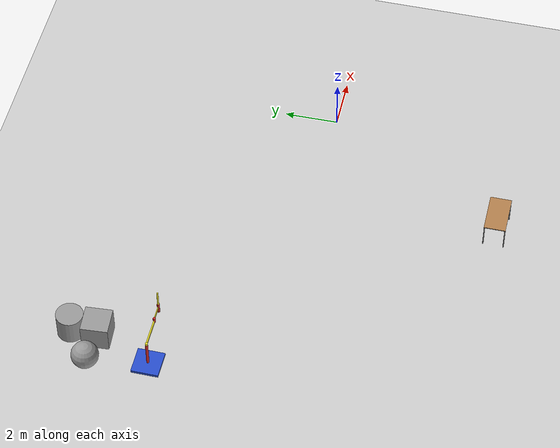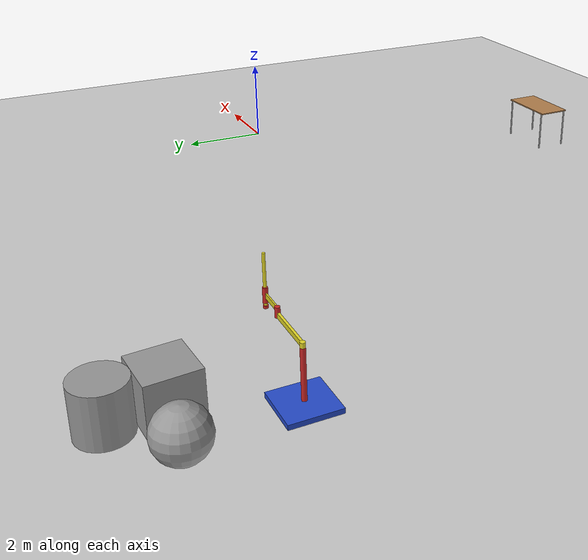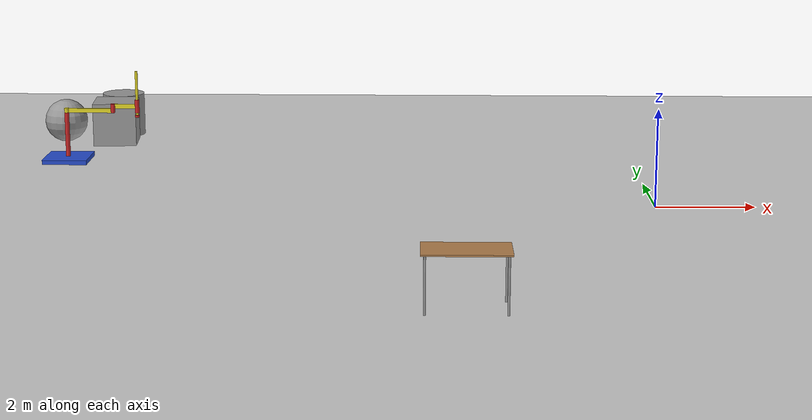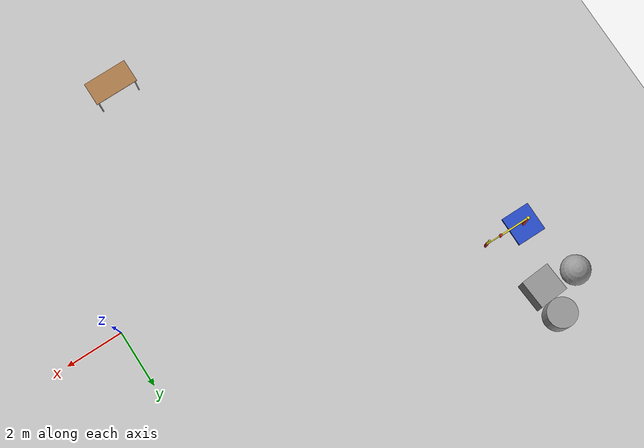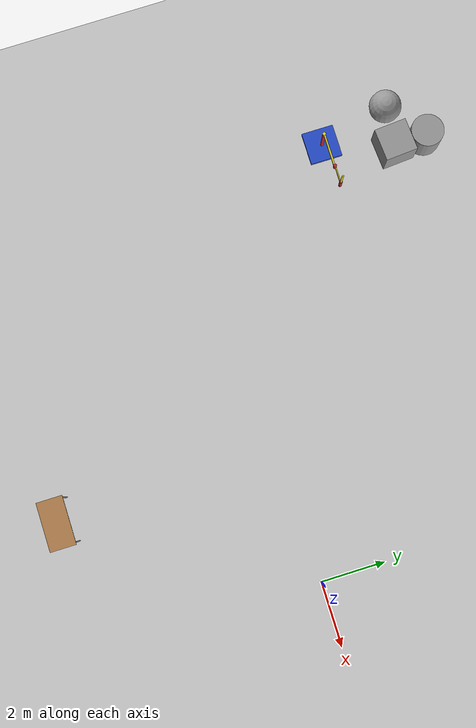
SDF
<sdf version="1.7">
 <world name="default">
  <model name="ground_plane">
   <static>1</static>
   <link name="link">
    <collision name="collision">
     <geometry><plane><normal>0 0 1</normal><size>100 100</size></plane></geometry>
     <surface><friction><ode><mu>100</mu><mu2>50</mu2></ode></friction></surface>
    </collision>
    <visual name="visual">
     <cast_shadows>0</cast_shadows>
     <geometry><plane><normal>0 0 1</normal><size>100 100</size></plane></geometry>
     <material>
      <script><uri>file://media/materials/scripts/gazebo.material</uri><name>Gazebo/Grey</name></script>
     </material>
    </visual>
   </link>
  </model>
  <model name="unit_cylinder">
   <pose>-11.9768 7.13366 0.499992 -3e-06 -4e-06 0.013015</pose>
   <link name="link">
    <inertial>
     <mass>1</mass>
     <inertia><ixx>0.145833</ixx><ixy>0</ixy><ixz>0</ixz><iyy>0.145833</iyy><iyz>0</iyz><izz>0.125</izz></inertia>
    </inertial>
    <collision name="collision">
     <geometry><cylinder><radius>0.5</radius><length>1</length></cylinder></geometry>
    </collision>
    <visual name="visual">
     <geometry><cylinder><radius>0.5</radius><length>1</length></cylinder></geometry>
     <material>
      <script><name>Gazebo/Grey</name><uri>file://media/materials/scripts/gazebo.material</uri></script>
     </material>
    </visual>
   </link>
  </model>
  <model name="unit_sphere">
   <pose>-13.2033 6.23711 0.5 0 -0 0</pose>
   <link name="link">
    <inertial>
     <mass>1</mass>
     <inertia><ixx>0.1</ixx><ixy>0</ixy><ixz>0</ixz><iyy>0.1</iyy><iyz>0</iyz><izz>0.1</izz></inertia>
    </inertial>
    <collision name="collision"><geometry><sphere><radius>0.5</radius></sphere></geometry></collision>
    <visual name="visual">
     <geometry><sphere><radius>0.5</radius></sphere></geometry>
     <material>
      <script><name>Gazebo/Grey</name><uri>file://media/materials/scripts/gazebo.material</uri></script>
     </material>
    </visual>
   </link>
  </model>
  <model name="unit_box">
   <pose>-11.9904 6.12986 0.5 0 -0 0.073842</pose>
   <link name="link">
    <inertial>
     <mass>1</mass>
     <inertia>
      <ixx>0.166667</ixx>
      <ixy>0</ixy>
      <ixz>0</ixz>
      <iyy>0.166667</iyy>
      <iyz>0</iyz>
      <izz>0.166667</izz>
     </inertia>
    </inertial>
    <collision name="collision"><geometry><box><size>1 1 1</size></box></geometry></collision>
    <visual name="visual">
     <geometry><box><size>1 1 1</size></box></geometry>
     <material>
      <script><name>Gazebo/Grey</name><uri>file://media/materials/scripts/gazebo.material</uri></script>
     </material>
    </visual>
   </link>
  </model>
  <model name="simple_arm">
   <link name="arm_base">
    <inertial>
     <pose>0 0 0.00099 0 -0 0</pose>
     <inertia><ixx>1.11</ixx><ixy>0</ixy><ixz>0</ixz><iyy>100.11</iyy><iyz>0</iyz><izz>1.01</izz></inertia>
     <mass>101</mass>
    </inertial>
    <collision name="arm_base_geom">
     <pose>0 0 0.05 0 -0 0</pose>
     <geometry><box><size>1 1 0.1</size></box></geometry>
    </collision>
    <visual name="arm_base_geom_visual">
     <pose>0 0 0.05 0 -0 0</pose>
     <geometry><box><size>1 1 0.1</size></box></geometry>
     <material>
      <script><uri>file://media/materials/scripts/gazebo.material</uri><name>Gazebo/Blue</name></script>
     </material>
    </visual>
    <collision name="arm_base_geom_arm_trunk">
     <pose>0 0 0.6 0 -0 0</pose>
     <geometry><cylinder><radius>0.05</radius><length>1</length></cylinder></geometry>
    </collision>
    <visual name="arm_base_geom_arm_trunk_visual">
     <pose>0 0 0.6 0 -0 0</pose>
     <geometry><cylinder><radius>0.05</radius><length>1</length></cylinder></geometry>
     <material>
      <script><uri>file://media/materials/scripts/gazebo.material</uri><name>Gazebo/Red</name></script>
     </material>
    </visual>
   </link>
   <link name="arm_shoulder_pan">
    <pose>0 0 1.1 0 -0 0</pose>
    <inertial>
     <pose>0.045455 0 0 0 -0 0</pose>
     <inertia><ixx>0.011</ixx><ixy>0</ixy><ixz>0</ixz><iyy>0.0225</iyy><iyz>0</iyz><izz>0.0135</izz></inertia>
     <mass>1.1</mass>
    </inertial>
    <collision name="arm_shoulder_pan_geom">
     <pose>0 0 0.05 0 -0 0</pose>
     <geometry><cylinder><radius>0.05</radius><length>0.1</length></cylinder></geometry>
    </collision>
    <visual name="arm_shoulder_pan_geom_visual">
     <pose>0 0 0.05 0 -0 0</pose>
     <geometry><cylinder><radius>0.05</radius><length>0.1</length></cylinder></geometry>
     <material>
      <script><uri>file://media/materials/scripts/gazebo.material</uri><name>Gazebo/Yellow</name></script>
     </material>
    </visual>
    <collision name="arm_shoulder_pan_geom_arm_shoulder">
     <pose>0.55 0 0.05 0 -0 0</pose>
     <geometry><box><size>1 0.05 0.1</size></box></geometry>
    </collision>
    <visual name="arm_shoulder_pan_geom_arm_shoulder_visual">
     <pose>0.55 0 0.05 0 -0 0</pose>
     <geometry><box><size>1 0.05 0.1</size></box></geometry>
     <material>
      <script><uri>file://media/materials/scripts/gazebo.material</uri><name>Gazebo/Yellow</name></script>
     </material>
    </visual>
   </link>
   <link name="arm_elbow_pan">
    <pose>1.05 0 1.1 0 -0 0</pose>
    <inertial>
     <pose>0.0875 0 0.083333 0 -0 0</pose>
     <inertia>
      <ixx>0.031</ixx>
      <ixy>0</ixy>
      <ixz>0.005</ixz>
      <iyy>0.07275</iyy>
      <iyz>0</iyz>
      <izz>0.04475</izz>
     </inertia>
     <mass>1.2</mass>
    </inertial>
    <collision name="arm_elbow_pan_geom">
     <pose>0 0 0.1 0 -0 0</pose>
     <geometry><cylinder><radius>0.05</radius><length>0.2</length></cylinder></geometry>
    </collision>
    <visual name="arm_elbow_pan_geom_visual">
     <pose>0 0 0.1 0 -0 0</pose>
     <geometry><cylinder><radius>0.05</radius><length>0.2</length></cylinder></geometry>
     <material>
      <script><uri>file://media/materials/scripts/gazebo.material</uri><name>Gazebo/Red</name></script>
     </material>
    </visual>
    <collision name="arm_elbow_pan_geom_arm_elbow">
     <pose>0.3 0 0.15 0 -0 0</pose>
     <geometry><box><size>0.5 0.03 0.1</size></box></geometry>
    </collision>
    <visual name="arm_elbow_pan_geom_arm_elbow_visual">
     <pose>0.3 0 0.15 0 -0 0</pose>
     <geometry><box><size>0.5 0.03 0.1</size></box></geometry>
     <material>
      <script><uri>file://media/materials/scripts/gazebo.material</uri><name>Gazebo/Yellow</name></script>
     </material>
    </visual>
    <collision name="arm_elbow_pan_geom_arm_wrist">
     <pose>0.55 0 0.15 0 -0 0</pose>
     <geometry><cylinder><radius>0.05</radius><length>0.3</length></cylinder></geometry>
    </collision>
    <visual name="arm_elbow_pan_geom_arm_wrist_visual">
     <pose>0.55 0 0.15 0 -0 0</pose>
     <geometry><cylinder><radius>0.05</radius><length>0.3</length></cylinder></geometry>
     <material>
      <script><uri>file://media/materials/scripts/gazebo.material</uri><name>Gazebo/Red</name></script>
     </material>
    </visual>
   </link>
   <link name="arm_wrist_lift">
    <pose>1.6 0 1.05 0 -0 0</pose>
    <inertial>
     <inertia><ixx>0.01</ixx><ixy>0</ixy><ixz>0</ixz><iyy>0.01</iyy><iyz>0</iyz><izz>0.001</izz></inertia>
     <mass>0.1</mass>
    </inertial>
    <collision name="arm_wrist_lift_geom">
     <pose>0 0 0.5 0 -0 0</pose>
     <geometry><cylinder><radius>0.03</radius><length>1</length></cylinder></geometry>
    </collision>
    <visual name="arm_wrist_lift_geom_visual">
     <pose>0 0 0.5 0 -0 0</pose>
     <geometry><cylinder><radius>0.03</radius><length>1</length></cylinder></geometry>
     <material>
      <script><uri>file://media/materials/scripts/gazebo.material</uri><name>Gazebo/Yellow</name></script>
     </material>
    </visual>
   </link>
   <link name="arm_wrist_roll">
    <pose>1.6 0 1 0 -0 0</pose>
    <inertial>
     <inertia><ixx>0.01</ixx><ixy>0</ixy><ixz>0</ixz><iyy>0.01</iyy><iyz>0</iyz><izz>0.001</izz></inertia>
     <mass>0.1</mass>
    </inertial>
    <collision name="arm_wrist_roll_geom">
     <pose>0 0 0.025 0 -0 0</pose>
     <geometry><cylinder><radius>0.05</radius><length>0.05</length></cylinder></geometry>
    </collision>
    <visual name="arm_wrist_roll_geom_visual">
     <pose>0 0 0.025 0 -0 0</pose>
     <geometry><cylinder><radius>0.05</radius><length>0.05</length></cylinder></geometry>
     <material>
      <script><uri>file://media/materials/scripts/gazebo.material</uri><name>Gazebo/Red</name></script>
     </material>
    </visual>
   </link>
   <joint name="arm_shoulder_pan_joint" type="revolute">
    <parent>arm_base</parent>
    <child>arm_shoulder_pan</child>
    <axis>
     <dynamics>
      <damping>1</damping>
      <friction>0</friction>
      <spring_reference>0</spring_reference>
      <spring_stiffness>0</spring_stiffness>
     </dynamics>
     <xyz expressed_in="__model__">0 0 1</xyz>
     <limit><lower>-1e+16</lower><upper>1e+16</upper></limit>
    </axis>
   </joint>
   <joint name="arm_elbow_pan_joint" type="revolute">
    <parent>arm_shoulder_pan</parent>
    <child>arm_elbow_pan</child>
    <axis>
     <dynamics>
      <damping>1</damping>
      <friction>0</friction>
      <spring_reference>0</spring_reference>
      <spring_stiffness>0</spring_stiffness>
     </dynamics>
     <xyz expressed_in="__model__">0 0 1</xyz>
     <limit><lower>-1e+16</lower><upper>1e+16</upper></limit>
    </axis>
   </joint>
   <joint name="arm_wrist_lift_joint" type="prismatic">
    <parent>arm_elbow_pan</parent>
    <child>arm_wrist_lift</child>
    <axis>
     <dynamics>
      <damping>1</damping>
      <friction>0</friction>
      <spring_reference>0</spring_reference>
      <spring_stiffness>0</spring_stiffness>
     </dynamics>
     <limit><lower>-0.8</lower><upper>0.1</upper></limit>
     <xyz expressed_in="__model__">0 0 1</xyz>
    </axis>
   </joint>
   <joint name="arm_wrist_roll_joint" type="revolute">
    <parent>arm_wrist_lift</parent>
    <child>arm_wrist_roll</child>
    <axis>
     <dynamics>
      <damping>1</damping>
      <friction>0</friction>
      <spring_reference>0</spring_reference>
      <spring_stiffness>0</spring_stiffness>
     </dynamics>
     <limit><lower>-2.99999</lower><upper>2.99999</upper></limit>
     <xyz expressed_in="__model__">0 0 1</xyz>
    </axis>
   </joint>
   <pose>-12.7411 4.07911 -0 0 0 -0.001314</pose>
  </model>
  <model name="table">
   <static>1</static>
   <link name="link">
    <collision name="surface">
     <pose>0 0 1 0 -0 0</pose>
     <geometry><box><size>1.5 0.8 0.03</size></box></geometry>
     <surface><friction><ode><mu>0.6</mu><mu2>0.6</mu2></ode></friction></surface>
    </collision>
    <visual name="visual1">
     <pose>0 0 1 0 -0 0</pose>
     <geometry><box><size>1.5 0.8 0.03</size></box></geometry>
     <material>
      <script><uri>file://media/materials/scripts/gazebo.material</uri><name>Gazebo/Wood</name></script>
     </material>
    </visual>
    <collision name="front_left_leg">
     <pose>0.68 0.38 0.5 0 -0 0</pose>
     <geometry><cylinder><radius>0.02</radius><length>1</length></cylinder></geometry>
    </collision>
    <visual name="front_left_leg">
     <pose>0.68 0.38 0.5 0 -0 0</pose>
     <geometry><cylinder><radius>0.02</radius><length>1</length></cylinder></geometry>
     <material>
      <script><uri>file://media/materials/scripts/gazebo.material</uri><name>Gazebo/Grey</name></script>
     </material>
    </visual>
    <collision name="front_right_leg">
     <pose>0.68 -0.38 0.5 0 -0 0</pose>
     <geometry><cylinder><radius>0.02</radius><length>1</length></cylinder></geometry>
    </collision>
    <visual name="front_right_leg">
     <pose>0.68 -0.38 0.5 0 -0 0</pose>
     <geometry><cylinder><radius>0.02</radius><length>1</length></cylinder></geometry>
     <material>
      <script><uri>file://media/materials/scripts/gazebo.material</uri><name>Gazebo/Grey</name></script>
     </material>
    </visual>
    <collision name="back_right_leg">
     <pose>-0.68 -0.38 0.5 0 -0 0</pose>
     <geometry><cylinder><radius>0.02</radius><length>1</length></cylinder></geometry>
    </collision>
    <visual name="back_right_leg">
     <pose>-0.68 -0.38 0.5 0 -0 0</pose>
     <geometry><cylinder><radius>0.02</radius><length>1</length></cylinder></geometry>
     <material>
      <script><uri>file://media/materials/scripts/gazebo.material</uri><name>Gazebo/Grey</name></script>
     </material>
    </visual>
    <collision name="back_left_leg">
     <pose>-0.68 0.38 0.5 0 -0 0</pose>
     <geometry><cylinder><radius>0.02</radius><length>1</length></cylinder></geometry>
    </collision>
    <visual name="back_left_leg">
     <pose>-0.68 0.38 0.5 0 -0 0</pose>
     <geometry><cylinder><radius>0.02</radius><length>1</length></cylinder></geometry>
     <material>
      <script><uri>file://media/materials/scripts/gazebo.material</uri><name>Gazebo/Grey</name></script>
     </material>
    </visual>
   </link>
   <pose>-4.00101 -6.91637 0 0 -0 0</pose>
  </model>
 </world>
</sdf>
